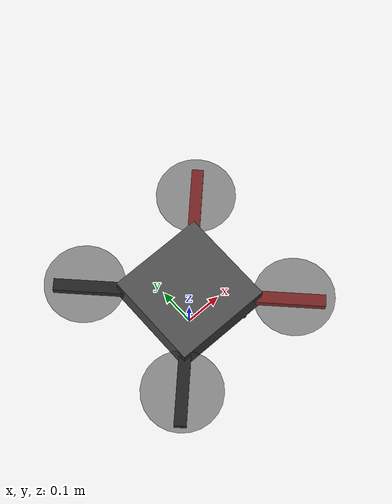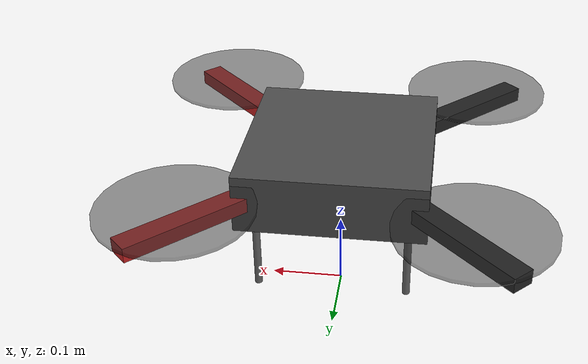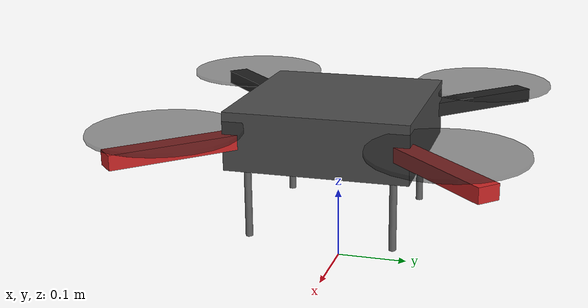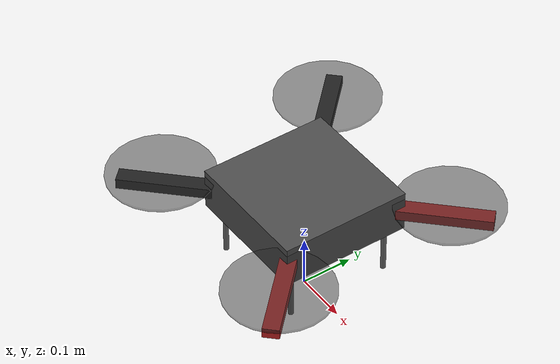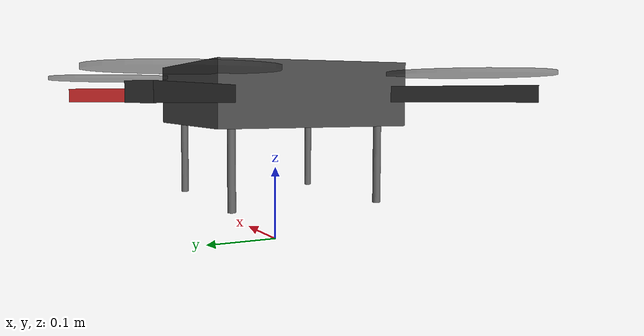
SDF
<?xml version="1.0"?>
<sdf version="1.9">
  <model name="nexus_quadcopter">
    <pose>0 0 0.2 0 0 0</pose>

    <!-- ── Base link (central body) ─────────────────────────────────── -->
    <link name="base_link">
      <inertial>
        <mass>1.5</mass>
        <inertia>
          <ixx>0.029125</ixx>
          <iyy>0.029125</iyy>
          <izz>0.055225</izz>
          <ixy>0</ixy><ixz>0</ixz><iyz>0</iyz>
        </inertia>
      </inertial>

      <!-- Central body -->
      <collision name="body_collision">
        <geometry>
          <box><size>0.25 0.25 0.08</size></box>
        </geometry>
      </collision>
      <visual name="body_visual">
        <geometry>
          <box><size>0.25 0.25 0.08</size></box>
        </geometry>
        <material>
          <ambient>0.2 0.2 0.2 1</ambient>
          <diffuse>0.3 0.3 0.3 1</diffuse>
          <specular>0.1 0.1 0.1 1</specular>
        </material>
      </visual>

      <!-- Arms -->
      <visual name="arm_fr">
        <pose>0.13 -0.13 0 0 0 -0.785</pose>
        <geometry><box><size>0.3 0.03 0.02</size></box></geometry>
        <material>
          <ambient>0.6 0.1 0.1 1</ambient>
          <diffuse>0.8 0.15 0.15 1</diffuse>
        </material>
      </visual>
      <visual name="arm_fl">
        <pose>0.13 0.13 0 0 0 0.785</pose>
        <geometry><box><size>0.3 0.03 0.02</size></box></geometry>
        <material>
          <ambient>0.6 0.1 0.1 1</ambient>
          <diffuse>0.8 0.15 0.15 1</diffuse>
        </material>
      </visual>
      <visual name="arm_rl">
        <pose>-0.13 0.13 0 0 0 -0.785</pose>
        <geometry><box><size>0.3 0.03 0.02</size></box></geometry>
        <material>
          <ambient>0.1 0.1 0.1 1</ambient>
          <diffuse>0.15 0.15 0.15 1</diffuse>
        </material>
      </visual>
      <visual name="arm_rr">
        <pose>-0.13 -0.13 0 0 0 0.785</pose>
        <geometry><box><size>0.3 0.03 0.02</size></box></geometry>
        <material>
          <ambient>0.1 0.1 0.1 1</ambient>
          <diffuse>0.15 0.15 0.15 1</diffuse>
        </material>
      </visual>

      <!-- Landing gear legs -->
      <visual name="leg_fl">
        <pose>0.1 0.1 -0.08 0 0 0</pose>
        <geometry><cylinder><radius>0.005</radius><length>0.12</length></cylinder></geometry>
        <material><ambient>0.3 0.3 0.3 1</ambient><diffuse>0.4 0.4 0.4 1</diffuse></material>
      </visual>
      <visual name="leg_fr">
        <pose>0.1 -0.1 -0.08 0 0 0</pose>
        <geometry><cylinder><radius>0.005</radius><length>0.12</length></cylinder></geometry>
        <material><ambient>0.3 0.3 0.3 1</ambient><diffuse>0.4 0.4 0.4 1</diffuse></material>
      </visual>
      <visual name="leg_rl">
        <pose>-0.1 0.1 -0.08 0 0 0</pose>
        <geometry><cylinder><radius>0.005</radius><length>0.12</length></cylinder></geometry>
        <material><ambient>0.3 0.3 0.3 1</ambient><diffuse>0.4 0.4 0.4 1</diffuse></material>
      </visual>
      <visual name="leg_rr">
        <pose>-0.1 -0.1 -0.08 0 0 0</pose>
        <geometry><cylinder><radius>0.005</radius><length>0.12</length></cylinder></geometry>
        <material><ambient>0.3 0.3 0.3 1</ambient><diffuse>0.4 0.4 0.4 1</diffuse></material>
      </visual>

      <!-- ── IMU sensor ──────────────────────────────────────────────── -->
      <sensor name="imu_sensor" type="imu">
        <always_on>true</always_on>
        <update_rate>250</update_rate>
        <imu>
          <angular_velocity>
            <x><noise type="gaussian">
              <mean>0.0</mean><stddev>0.0002</stddev>
              <bias_mean>0.0</bias_mean><bias_stddev>0.00004</bias_stddev>
            </noise></x>
            <y><noise type="gaussian">
              <mean>0.0</mean><stddev>0.0002</stddev>
              <bias_mean>0.0</bias_mean><bias_stddev>0.00004</bias_stddev>
            </noise></y>
            <z><noise type="gaussian">
              <mean>0.0</mean><stddev>0.0002</stddev>
              <bias_mean>0.0</bias_mean><bias_stddev>0.00004</bias_stddev>
            </noise></z>
          </angular_velocity>
          <linear_acceleration>
            <x><noise type="gaussian">
              <mean>0.0</mean><stddev>0.004</stddev>
              <bias_mean>0.0</bias_mean><bias_stddev>0.0006</bias_stddev>
            </noise></x>
            <y><noise type="gaussian">
              <mean>0.0</mean><stddev>0.004</stddev>
              <bias_mean>0.0</bias_mean><bias_stddev>0.0006</bias_stddev>
            </noise></y>
            <z><noise type="gaussian">
              <mean>0.0</mean><stddev>0.004</stddev>
              <bias_mean>0.0</bias_mean><bias_stddev>0.0006</bias_stddev>
            </noise></z>
          </linear_acceleration>
        </imu>
        <topic>imu</topic>
      </sensor>

      <!-- ── GPS / NavSat sensor ─────────────────────────────────────── -->
      <sensor name="navsat_sensor" type="navsat">
        <always_on>true</always_on>
        <update_rate>10</update_rate>
        <navsat>
          <position_sensing>
            <horizontal><noise type="gaussian">
              <mean>0.0</mean><stddev>0.5</stddev>
            </noise></horizontal>
            <vertical><noise type="gaussian">
              <mean>0.0</mean><stddev>1.0</stddev>
            </noise></vertical>
          </position_sensing>
          <velocity_sensing>
            <horizontal><noise type="gaussian">
              <mean>0.0</mean><stddev>0.1</stddev>
            </noise></horizontal>
            <vertical><noise type="gaussian">
              <mean>0.0</mean><stddev>0.2</stddev>
            </noise></vertical>
          </velocity_sensing>
        </navsat>
        <topic>navsat</topic>
      </sensor>

      <!-- ── Barometer (air pressure) ────────────────────────────────── -->
      <sensor name="air_pressure_sensor" type="air_pressure">
        <always_on>true</always_on>
        <update_rate>50</update_rate>
        <air_pressure>
          <reference_altitude>0</reference_altitude>
          <pressure><noise type="gaussian">
            <mean>0.0</mean><stddev>5.0</stddev>
          </noise></pressure>
        </air_pressure>
        <topic>air_pressure</topic>
      </sensor>

      <!-- ── Magnetometer ────────────────────────────────────────────── -->
      <sensor name="magnetometer_sensor" type="magnetometer">
        <always_on>true</always_on>
        <update_rate>50</update_rate>
        <magnetometer>
          <x><noise type="gaussian">
            <mean>0.0</mean><stddev>0.001</stddev>
          </noise></x>
          <y><noise type="gaussian">
            <mean>0.0</mean><stddev>0.001</stddev>
          </noise></y>
          <z><noise type="gaussian">
            <mean>0.0</mean><stddev>0.001</stddev>
          </noise></z>
        </magnetometer>
        <topic>magnetometer</topic>
      </sensor>

      <!-- ── Downward-facing camera ──────────────────────────────────── -->
      <sensor name="camera_sensor" type="camera">
        <pose>0 0 -0.05 0 1.5708 0</pose>
        <always_on>true</always_on>
        <update_rate>30</update_rate>
        <camera>
          <horizontal_fov>1.5708</horizontal_fov>
          <image>
            <width>640</width>
            <height>480</height>
            <format>R8G8B8</format>
          </image>
          <clip>
            <near>0.1</near>
            <far>100</far>
          </clip>
        </camera>
        <topic>camera</topic>
      </sensor>

      <!-- ── Depth camera ────────────────────────────────────────────── -->
      <sensor name="depth_camera_sensor" type="depth_camera">
        <pose>0.12 0 0 0 0 0</pose>
        <always_on>true</always_on>
        <update_rate>15</update_rate>
        <camera>
          <horizontal_fov>1.2217</horizontal_fov>
          <image>
            <width>320</width>
            <height>240</height>
            <format>R_FLOAT32</format>
          </image>
          <clip>
            <near>0.2</near>
            <far>20</far>
          </clip>
        </camera>
        <topic>depth_camera</topic>
      </sensor>

      <!-- ── 2D LiDAR ───────────────────────────────────────────────── -->
      <sensor name="lidar_sensor" type="gpu_lidar">
        <pose>0 0 0.05 0 0 0</pose>
        <always_on>true</always_on>
        <update_rate>10</update_rate>
        <lidar>
          <scan>
            <horizontal>
              <samples>360</samples>
              <resolution>1</resolution>
              <min_angle>-3.14159</min_angle>
              <max_angle>3.14159</max_angle>
            </horizontal>
            <vertical>
              <samples>1</samples>
              <resolution>1</resolution>
              <min_angle>0</min_angle>
              <max_angle>0</max_angle>
            </vertical>
          </scan>
          <range>
            <min>0.1</min>
            <max>30.0</max>
            <resolution>0.01</resolution>
          </range>
          <noise type="gaussian">
            <mean>0.0</mean>
            <stddev>0.02</stddev>
          </noise>
        </lidar>
        <topic>lidar</topic>
      </sensor>

    </link>

    <!-- ── Motor visuals (propeller discs) ───────────────────────────── -->
    <!-- Front-Right motor (CW) -->
    <link name="rotor_fr">
      <pose>0.18 -0.18 0.025 0 0 0</pose>
      <inertial>
        <mass>0.025</mass>
        <inertia>
          <ixx>0.000025</ixx><iyy>0.000025</iyy><izz>0.00005</izz>
          <ixy>0</ixy><ixz>0</ixz><iyz>0</iyz>
        </inertia>
      </inertial>
      <visual name="visual">
        <geometry><cylinder><radius>0.1</radius><length>0.005</length></cylinder></geometry>
        <material>
          <ambient>0.1 0.1 0.1 0.5</ambient>
          <diffuse>0.15 0.15 0.15 0.5</diffuse>
        </material>
      </visual>
    </link>

    <!-- Front-Left motor (CCW) -->
    <link name="rotor_fl">
      <pose>0.18 0.18 0.025 0 0 0</pose>
      <inertial>
        <mass>0.025</mass>
        <inertia>
          <ixx>0.000025</ixx><iyy>0.000025</iyy><izz>0.00005</izz>
          <ixy>0</ixy><ixz>0</ixz><iyz>0</iyz>
        </inertia>
      </inertial>
      <visual name="visual">
        <geometry><cylinder><radius>0.1</radius><length>0.005</length></cylinder></geometry>
        <material>
          <ambient>0.1 0.1 0.1 0.5</ambient>
          <diffuse>0.15 0.15 0.15 0.5</diffuse>
        </material>
      </visual>
    </link>

    <!-- Rear-Left motor (CW) -->
    <link name="rotor_rl">
      <pose>-0.18 0.18 0.025 0 0 0</pose>
      <inertial>
        <mass>0.025</mass>
        <inertia>
          <ixx>0.000025</ixx><iyy>0.000025</iyy><izz>0.00005</izz>
          <ixy>0</ixy><ixz>0</ixz><iyz>0</iyz>
        </inertia>
      </inertial>
      <visual name="visual">
        <geometry><cylinder><radius>0.1</radius><length>0.005</length></cylinder></geometry>
        <material>
          <ambient>0.1 0.1 0.1 0.5</ambient>
          <diffuse>0.15 0.15 0.15 0.5</diffuse>
        </material>
      </visual>
    </link>

    <!-- Rear-Right motor (CCW) -->
    <link name="rotor_rr">
      <pose>-0.18 -0.18 0.025 0 0 0</pose>
      <inertial>
        <mass>0.025</mass>
        <inertia>
          <ixx>0.000025</ixx><iyy>0.000025</iyy><izz>0.00005</izz>
          <ixy>0</ixy><ixz>0</ixz><iyz>0</iyz>
        </inertia>
      </inertial>
      <visual name="visual">
        <geometry><cylinder><radius>0.1</radius><length>0.005</length></cylinder></geometry>
        <material>
          <ambient>0.1 0.1 0.1 0.5</ambient>
          <diffuse>0.15 0.15 0.15 0.5</diffuse>
        </material>
      </visual>
    </link>

    <!-- ── Rotor joints ──────────────────────────────────────────────── -->
    <joint name="rotor_fr_joint" type="revolute">
      <parent>base_link</parent>
      <child>rotor_fr</child>
      <axis><xyz>0 0 1</xyz><limit><lower>-1e16</lower><upper>1e16</upper></limit></axis>
    </joint>
    <joint name="rotor_fl_joint" type="revolute">
      <parent>base_link</parent>
      <child>rotor_fl</child>
      <axis><xyz>0 0 1</xyz><limit><lower>-1e16</lower><upper>1e16</upper></limit></axis>
    </joint>
    <joint name="rotor_rl_joint" type="revolute">
      <parent>base_link</parent>
      <child>rotor_rl</child>
      <axis><xyz>0 0 1</xyz><limit><lower>-1e16</lower><upper>1e16</upper></limit></axis>
    </joint>
    <joint name="rotor_rr_joint" type="revolute">
      <parent>base_link</parent>
      <child>rotor_rr</child>
      <axis><xyz>0 0 1</xyz><limit><lower>-1e16</lower><upper>1e16</upper></limit></axis>
    </joint>

  </model>
</sdf>
